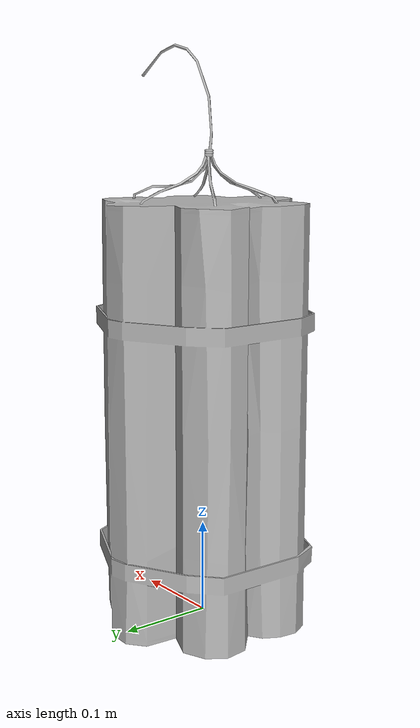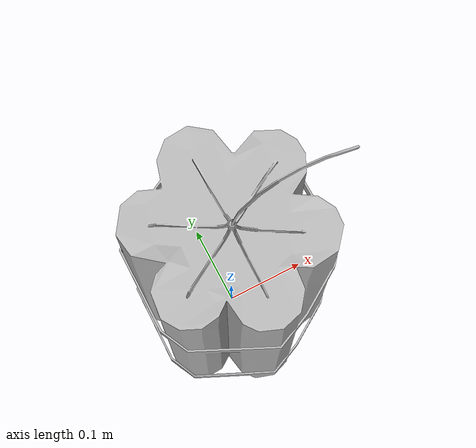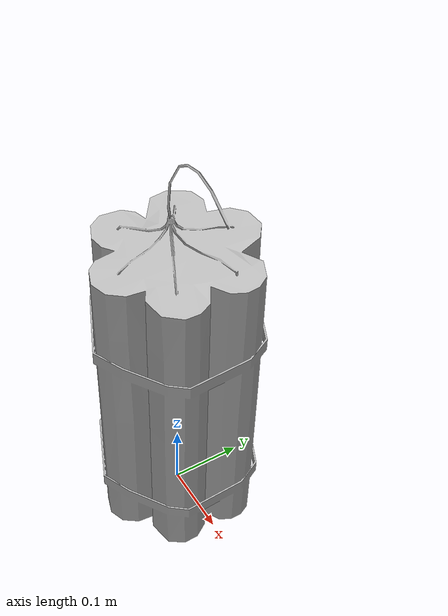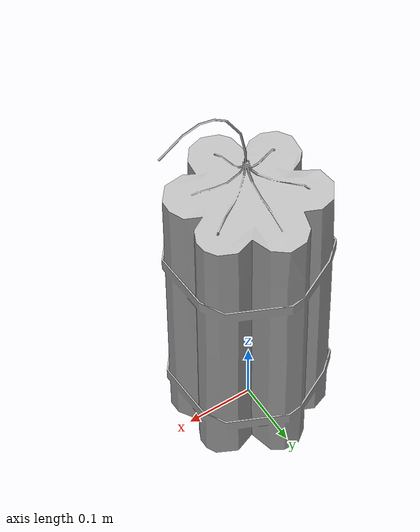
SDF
<?xml version="1.0" ?>
<sdf version="1.5">
  <model name="Dynamite">
    <link name="link">
      <pose>0 0 0 0 0 0</pose>
      <collision name="collision">
        <geometry>
          <mesh>
            <uri>model://Dynamite/Dynamite.dae</uri>
            <scale>0.5 0.5 0.5</scale>
          </mesh>
        </geometry>
      </collision>
      <visual name="visual">
        <geometry>
          <mesh>
            <uri>model://Dynamite/Dynamite.dae</uri>
            <scale>0.5 0.5 0.5</scale>
          </mesh>
        </geometry>
      </visual>
    </link>
  </model>
</sdf>
